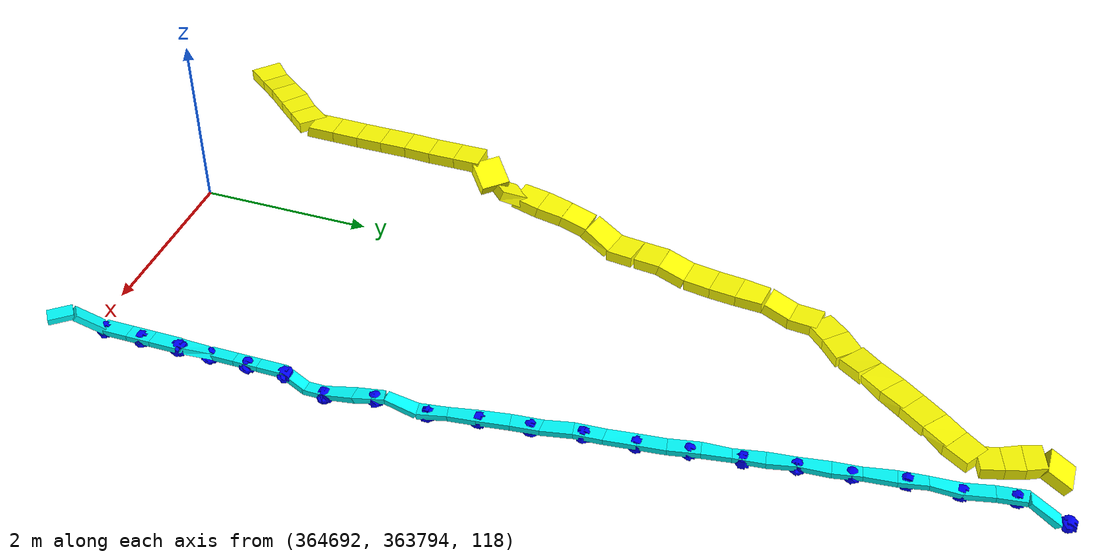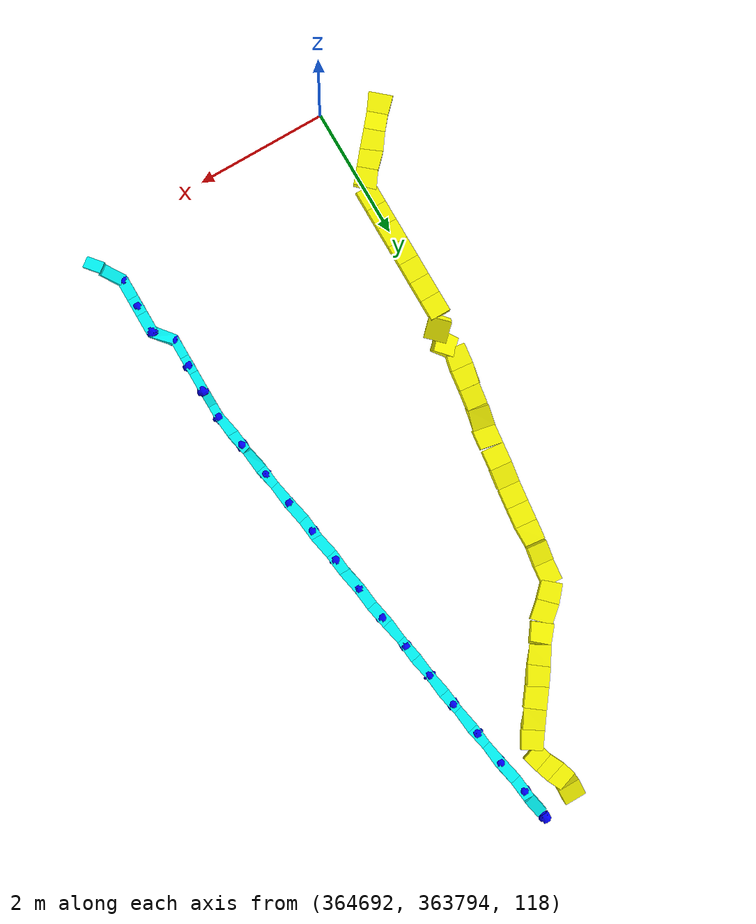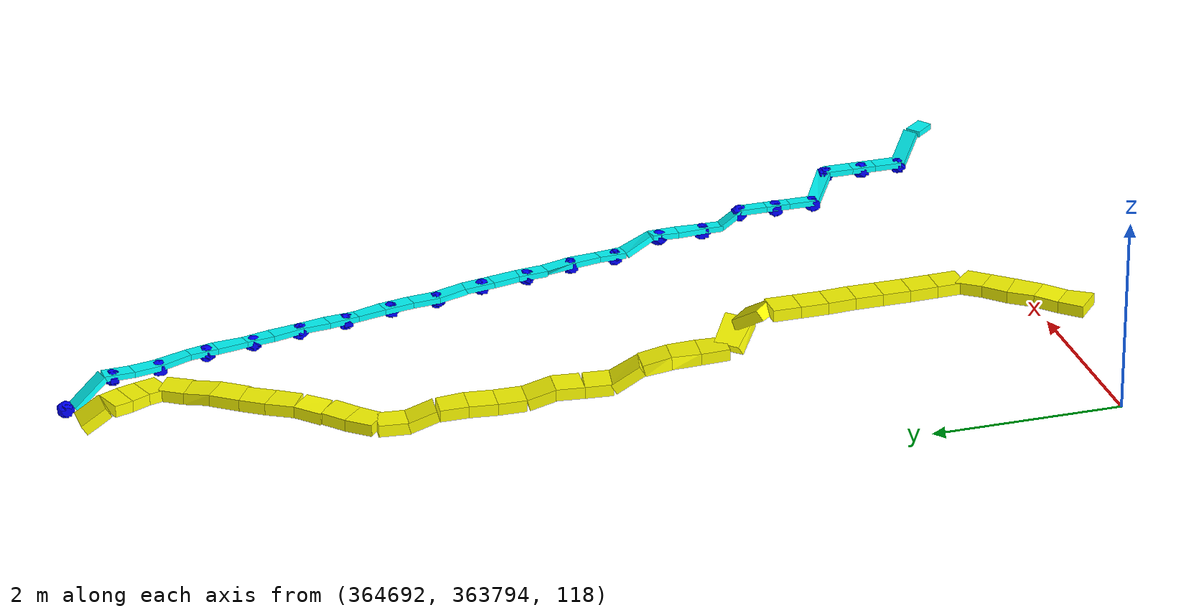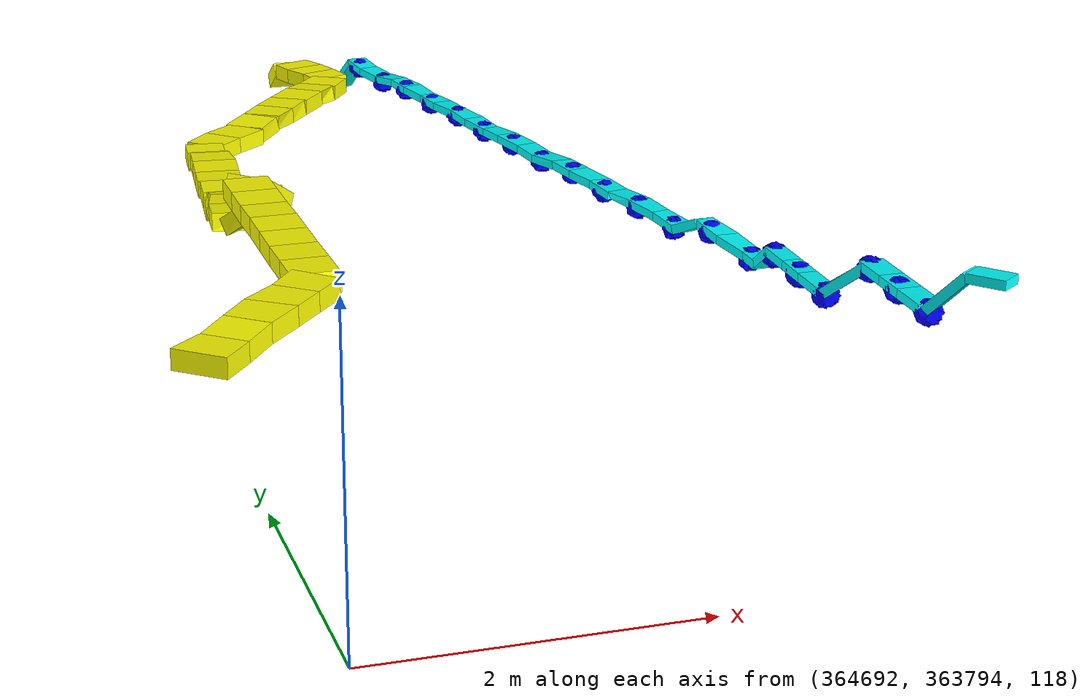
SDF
<sdf version="1.5">
 <world name="default">
  <include><uri>model://sun</uri></include>
  <model name="road_segment_88">
   <static>true</static>
   <pose>364691.49 363794.74 119.4833333333673 0 0.025601781209375292 0.876058050741327</pose>
   <link name="link">
    <collision name="collision">
     <geometry><box><size>0.2604269997808396 0.3 0.12</size></box></geometry>
     <surface><friction><ode><mu>0.2</mu><mu2>0.2</mu2></ode></friction></surface>
    </collision>
    <visual name="visual">
     <geometry><box><size>0.2604269997808396 0.3 0.12</size></box></geometry>
     <material><ambient>1 1 0 1</ambient><diffuse>1 1 0 1</diffuse><emissive>1 1 0 1</emissive></material>
    </visual>
   </link>
  </model>
  <model name="road_segment_89">
   <static>true</static>
   <pose>364691.6566666666 363794.94000000006 119.48999999990978 0 -0.07667153465420966 0.8760580505695668</pose>
   <link name="link">
    <collision name="collision">
     <geometry><box><size>0.2611087470416959 0.3 0.12</size></box></geometry>
     <surface><friction><ode><mu>0.2</mu><mu2>0.2</mu2></ode></friction></surface>
    </collision>
    <visual name="visual">
     <geometry><box><size>0.2611087470416959 0.3 0.12</size></box></geometry>
     <material><ambient>1 1 0 1</ambient><diffuse>1 1 0 1</diffuse><emissive>1 1 0 1</emissive></material>
    </visual>
   </link>
  </model>
  <model name="road_segment_90">
   <static>true</static>
   <pose>364691.82333333336 363795.14 119.49999999990978 0 -6.930708869335544e-10 0.8760580504264331</pose>
   <link name="link">
    <collision name="collision">
     <geometry><box><size>0.26034165584020325 0.3 0.12</size></box></geometry>
     <surface><friction><ode><mu>0.2</mu><mu2>0.2</mu2></ode></friction></surface>
    </collision>
    <visual name="visual">
     <geometry><box><size>0.26034165584020325 0.3 0.12</size></box></geometry>
     <material><ambient>1 1 0 1</ambient><diffuse>1 1 0 1</diffuse><emissive>1 1 0 1</emissive></material>
    </visual>
   </link>
  </model>
  <model name="road_segment_91">
   <static>true</static>
   <pose>364691.99 363795.33999999997 119.5 0 -0.0 0.876058050741327</pose>
   <link name="link">
    <collision name="collision">
     <geometry><box><size>0.260341655847656 0.3 0.12</size></box></geometry>
     <surface><friction><ode><mu>0.02</mu><mu2>0.02</mu2></ode></friction></surface>
    </collision>
    <visual name="visual">
     <geometry><box><size>0.260341655847656 0.3 0.12</size></box></geometry>
     <material><ambient>1 1 0 1</ambient><diffuse>1 1 0 1</diffuse><emissive>1 1 0 1</emissive></material>
    </visual>
   </link>
  </model>
  <model name="road_segment_92">
   <static>true</static>
   <pose>364692.1566666666 363795.54000000004 119.5 0 -0.0 0.8760580505695668</pose>
   <link name="link">
    <collision name="collision">
     <geometry><box><size>0.26034165588491964 0.3 0.12</size></box></geometry>
     <surface><friction><ode><mu>0.02</mu><mu2>0.02</mu2></ode></friction></surface>
    </collision>
    <visual name="visual">
     <geometry><box><size>0.26034165588491964 0.3 0.12</size></box></geometry>
     <material><ambient>1 1 0 1</ambient><diffuse>1 1 0 1</diffuse><emissive>1 1 0 1</emissive></material>
    </visual>
   </link>
  </model>
  <model name="road_segment_93">
   <static>true</static>
   <pose>364692.24 363795.78285714285 119.4978571429035 0 0.014998874826124125 1.5707963267948966</pose>
   <link name="link">
    <collision name="collision">
     <geometry><box><size>0.28574642678714907 0.3 0.12</size></box></geometry>
     <surface><friction><ode><mu>0.2</mu><mu2>0.2</mu2></ode></friction></surface>
    </collision>
    <visual name="visual">
     <geometry><box><size>0.28574642678714907 0.3 0.12</size></box></geometry>
     <material><ambient>1 1 0 1</ambient><diffuse>1 1 0 1</diffuse><emissive>1 1 0 1</emissive></material>
    </visual>
   </link>
  </model>
  <model name="road_segment_94">
   <static>true</static>
   <pose>364692.24 363796.0685714286 119.4928571429035 0 0.019997334299856152 1.5707963267948966</pose>
   <link name="link">
    <collision name="collision">
     <geometry><box><size>0.2857714228268845 0.3 0.12</size></box></geometry>
     <surface><friction><ode><mu>0.2</mu><mu2>0.2</mu2></ode></friction></surface>
    </collision>
    <visual name="visual">
     <geometry><box><size>0.2857714228268845 0.3 0.12</size></box></geometry>
     <material><ambient>1 1 0 1</ambient><diffuse>1 1 0 1</diffuse><emissive>1 1 0 1</emissive></material>
    </visual>
   </link>
  </model>
  <model name="road_segment_95">
   <static>true</static>
   <pose>364692.24 363796.35428571433 119.49 0 -0.0 1.5707963267948966</pose>
   <link name="link">
    <collision name="collision">
     <geometry><box><size>0.28571428573923185 0.3 0.12</size></box></geometry>
     <surface><friction><ode><mu>0.2</mu><mu2>0.2</mu2></ode></friction></surface>
    </collision>
    <visual name="visual">
     <geometry><box><size>0.28571428573923185 0.3 0.12</size></box></geometry>
     <material><ambient>1 1 0 1</ambient><diffuse>1 1 0 1</diffuse><emissive>1 1 0 1</emissive></material>
    </visual>
   </link>
  </model>
  <model name="road_segment_96">
   <static>true</static>
   <pose>364692.24 363796.64 119.49 0 -0.0 1.5707963267948966</pose>
   <link name="link">
    <collision name="collision">
     <geometry><box><size>0.2857142856810242 0.3 0.12</size></box></geometry>
     <surface><friction><ode><mu>0.2</mu><mu2>0.2</mu2></ode></friction></surface>
    </collision>
    <visual name="visual">
     <geometry><box><size>0.2857142856810242 0.3 0.12</size></box></geometry>
     <material><ambient>1 1 0 1</ambient><diffuse>1 1 0 1</diffuse><emissive>1 1 0 1</emissive></material>
    </visual>
   </link>
  </model>
  <model name="road_segment_97">
   <static>true</static>
   <pose>364692.24 363796.9257142857 119.485 0 0.0349857188254418 1.5707963267948966</pose>
   <link name="link">
    <collision name="collision">
     <geometry><box><size>0.28588923217826734 0.3 0.12</size></box></geometry>
     <surface><friction><ode><mu>0.2</mu><mu2>0.2</mu2></ode></friction></surface>
    </collision>
    <visual name="visual">
     <geometry><box><size>0.28588923217826734 0.3 0.12</size></box></geometry>
     <material><ambient>1 1 0 1</ambient><diffuse>1 1 0 1</diffuse><emissive>1 1 0 1</emissive></material>
    </visual>
   </link>
  </model>
  <model name="road_segment_98">
   <static>true</static>
   <pose>364692.24 363797.21142857143 119.48 0 -0.0 1.5707963267948966</pose>
   <link name="link">
    <collision name="collision">
     <geometry><box><size>0.2857142856810242 0.3 0.12</size></box></geometry>
     <surface><friction><ode><mu>0.2</mu><mu2>0.2</mu2></ode></friction></surface>
    </collision>
    <visual name="visual">
     <geometry><box><size>0.2857142856810242 0.3 0.12</size></box></geometry>
     <material><ambient>1 1 0 1</ambient><diffuse>1 1 0 1</diffuse><emissive>1 1 0 1</emissive></material>
    </visual>
   </link>
  </model>
  <model name="road_segment_99">
   <static>true</static>
   <pose>364692.24 363797.4971428572 119.48 0 -0.0 1.5707963267948966</pose>
   <link name="link">
    <collision name="collision">
     <geometry><box><size>0.28571428573923185 0.3 0.12</size></box></geometry>
     <surface><friction><ode><mu>0.2</mu><mu2>0.2</mu2></ode></friction></surface>
    </collision>
    <visual name="visual">
     <geometry><box><size>0.28571428573923185 0.3 0.12</size></box></geometry>
     <material><ambient>1 1 0 1</ambient><diffuse>1 1 0 1</diffuse><emissive>1 1 0 1</emissive></material>
    </visual>
   </link>
  </model>
  <model name="road_segment_100">
   <static>true</static>
   <pose>364692.33999999997 363797.74 119.40000000016298 0 0.5148059542218474 0.7853981633974483</pose>
   <link name="link">
    <collision name="collision">
     <geometry><box><size>0.3249615360392846 0.3 0.12</size></box></geometry>
     <surface><friction><ode><mu>0.2</mu><mu2>0.2</mu2></ode></friction></surface>
    </collision>
    <visual name="visual">
     <geometry><box><size>0.3249615360392846 0.3 0.12</size></box></geometry>
     <material><ambient>1 1 0 1</ambient><diffuse>1 1 0 1</diffuse><emissive>1 1 0 1</emissive></material>
    </visual>
   </link>
  </model>
  <model name="road_segment_101">
   <static>true</static>
   <pose>364692.33999999997 363797.94 119.22500000194559 0 0.5915145684228108 2.356194490337864</pose>
   <link name="link">
    <collision name="collision">
     <geometry><box><size>0.34073449892124025 0.3 0.12</size></box></geometry>
     <surface><friction><ode><mu>0.2</mu><mu2>0.2</mu2></ode></friction></surface>
    </collision>
    <visual name="visual">
     <geometry><box><size>0.34073449892124025 0.3 0.12</size></box></geometry>
     <material><ambient>1 1 0 1</ambient><diffuse>1 1 0 1</diffuse><emissive>1 1 0 1</emissive></material>
    </visual>
   </link>
  </model>
  <model name="road_segment_102">
   <static>true</static>
   <pose>364692.26 363798.18 119.11800000191182 0 0.08465005384442381 1.4288992722780443</pose>
   <link name="link">
    <collision name="collision">
     <geometry><box><size>0.28385912029155475 0.3 0.12</size></box></geometry>
     <surface><friction><ode><mu>0.2</mu><mu2>0.2</mu2></ode></friction></surface>
    </collision>
    <visual name="visual">
     <geometry><box><size>0.28385912029155475 0.3 0.12</size></box></geometry>
     <material><ambient>1 1 0 1</ambient><diffuse>1 1 0 1</diffuse><emissive>1 1 0 1</emissive></material>
    </visual>
   </link>
  </model>
  <model name="road_segment_103">
   <static>true</static>
   <pose>364692.3 363798.45999999996 119.09400000024796 0 0.0846500423249541 1.4288992720452136</pose>
   <link name="link">
    <collision name="collision">
     <geometry><box><size>0.2838591199645257 0.3 0.12</size></box></geometry>
     <surface><friction><ode><mu>0.2</mu><mu2>0.2</mu2></ode></friction></surface>
    </collision>
    <visual name="visual">
     <geometry><box><size>0.2838591199645257 0.3 0.12</size></box></geometry>
     <material><ambient>1 1 0 1</ambient><diffuse>1 1 0 1</diffuse><emissive>1 1 0 1</emissive></material>
    </visual>
   </link>
  </model>
  <model name="road_segment_104">
   <static>true</static>
   <pose>364692.33999999997 363798.74 119.04900000130532 0 0.2292432158590629 1.4288992722780443</pose>
   <link name="link">
    <collision name="collision">
     <geometry><box><size>0.29044104347021643 0.3 0.12</size></box></geometry>
     <surface><friction><ode><mu>0.2</mu><mu2>0.2</mu2></ode></friction></surface>
    </collision>
    <visual name="visual">
     <geometry><box><size>0.29044104347021643 0.3 0.12</size></box></geometry>
     <material><ambient>1 1 0 1</ambient><diffuse>1 1 0 1</diffuse><emissive>1 1 0 1</emissive></material>
    </visual>
   </link>
  </model>
  <model name="road_segment_105">
   <static>true</static>
   <pose>364692.38 363799.02 118.93000000120577 0 0.5463627489532709 1.4288992720452136</pose>
   <link name="link">
    <collision name="collision">
     <geometry><box><size>0.3310347425711785 0.3 0.12</size></box></geometry>
     <surface><friction><ode><mu>0.2</mu><mu2>0.2</mu2></ode></friction></surface>
    </collision>
    <visual name="visual">
     <geometry><box><size>0.3310347425711785 0.3 0.12</size></box></geometry>
     <material><ambient>1 1 0 1</ambient><diffuse>1 1 0 1</diffuse><emissive>1 1 0 1</emissive></material>
    </visual>
   </link>
  </model>
  <model name="road_segment_106">
   <static>true</static>
   <pose>364692.42000000004 363799.3 118.84200000003959 0 0.014141192918354853 1.4288992722780443</pose>
   <link name="link">
    <collision name="collision">
     <geometry><box><size>0.2828709953564544 0.3 0.12</size></box></geometry>
     <surface><friction><ode><mu>0.2</mu><mu2>0.2</mu2></ode></friction></surface>
    </collision>
    <visual name="visual">
     <geometry><box><size>0.2828709953564544 0.3 0.12</size></box></geometry>
     <material><ambient>1 1 0 1</ambient><diffuse>1 1 0 1</diffuse><emissive>1 1 0 1</emissive></material>
    </visual>
   </link>
  </model>
  <model name="road_segment_107">
   <static>true</static>
   <pose>364692.4542857143 363799.5828571429 118.84000000002037 0 1.418911308000869e-10 1.4711276743642474</pose>
   <link name="link">
    <collision name="collision">
     <geometry><box><size>0.28713930348392985 0.3 0.12</size></box></geometry>
     <surface><friction><ode><mu>0.2</mu><mu2>0.2</mu2></ode></friction></surface>
    </collision>
    <visual name="visual">
     <geometry><box><size>0.28713930348392985 0.3 0.12</size></box></geometry>
     <material><ambient>1 1 0 1</ambient><diffuse>1 1 0 1</diffuse><emissive>1 1 0 1</emissive></material>
    </visual>
   </link>
  </model>
  <model name="road_segment_108">
   <static>true</static>
   <pose>364692.48285714287 363799.8685714286 118.79714285767712 0 0.2900903210444509 1.471127674142367</pose>
   <link name="link">
    <collision name="collision">
     <geometry><box><size>0.2996596705725312 0.3 0.12</size></box></geometry>
     <surface><friction><ode><mu>0.2</mu><mu2>0.2</mu2></ode></friction></surface>
    </collision>
    <visual name="visual">
     <geometry><box><size>0.2996596705725312 0.3 0.12</size></box></geometry>
     <material><ambient>1 1 0 1</ambient><diffuse>1 1 0 1</diffuse><emissive>1 1 0 1</emissive></material>
    </visual>
   </link>
  </model>
  <model name="road_segment_109">
   <static>true</static>
   <pose>364692.5114285714 363800.15428571426 118.7471428576771 0 0.04971087468636034 1.4711276743642474</pose>
   <link name="link">
    <collision name="collision">
     <geometry><box><size>0.2874944543263723 0.3 0.12</size></box></geometry>
     <surface><friction><ode><mu>0.1</mu><mu2>0.1</mu2></ode></friction></surface>
    </collision>
    <visual name="visual">
     <geometry><box><size>0.2874944543263723 0.3 0.12</size></box></geometry>
     <material><ambient>1 1 0 1</ambient><diffuse>1 1 0 1</diffuse><emissive>1 1 0 1</emissive></material>
    </visual>
   </link>
  </model>
  <model name="road_segment_110">
   <static>true</static>
   <pose>364692.54000000004 363800.44 118.74 0 -0.0 1.4711276743440764</pose>
   <link name="link">
    <collision name="collision">
     <geometry><box><size>0.28713930342601107 0.3 0.12</size></box></geometry>
     <surface><friction><ode><mu>0.1</mu><mu2>0.1</mu2></ode></friction></surface>
    </collision>
    <visual name="visual">
     <geometry><box><size>0.28713930342601107 0.3 0.12</size></box></geometry>
     <material><ambient>1 1 0 1</ambient><diffuse>1 1 0 1</diffuse><emissive>1 1 0 1</emissive></material>
    </visual>
   </link>
  </model>
  <model name="road_segment_111">
   <static>true</static>
   <pose>364692.56857142854 363800.72571428574 118.73142857207966 0 0.0596314448584297 1.4711276743642474</pose>
   <link name="link">
    <collision name="collision">
     <geometry><box><size>0.2876505816291878 0.3 0.12</size></box></geometry>
     <surface><friction><ode><mu>0.1</mu><mu2>0.1</mu2></ode></friction></surface>
    </collision>
    <visual name="visual">
     <geometry><box><size>0.2876505816291878 0.3 0.12</size></box></geometry>
     <material><ambient>1 1 0 1</ambient><diffuse>1 1 0 1</diffuse><emissive>1 1 0 1</emissive></material>
    </visual>
   </link>
  </model>
  <model name="road_segment_112">
   <static>true</static>
   <pose>364692.59714285715 363801.0114285714 118.67142857207968 0 0.3439730528641138 1.471127674142367</pose>
   <link name="link">
    <collision name="collision">
     <geometry><box><size>0.3050058551567727 0.3 0.12</size></box></geometry>
     <surface><friction><ode><mu>0.1</mu><mu2>0.1</mu2></ode></friction></surface>
    </collision>
    <visual name="visual">
     <geometry><box><size>0.3050058551567727 0.3 0.12</size></box></geometry>
     <material><ambient>1 1 0 1</ambient><diffuse>1 1 0 1</diffuse><emissive>1 1 0 1</emissive></material>
    </visual>
   </link>
  </model>
  <model name="road_segment_113">
   <static>true</static>
   <pose>364692.62571428576 363801.2971428571 118.62 0 -0.0 1.4711276743642474</pose>
   <link name="link">
    <collision name="collision">
     <geometry><box><size>0.28713930348392985 0.3 0.12</size></box></geometry>
     <surface><friction><ode><mu>0.1</mu><mu2>0.1</mu2></ode></friction></surface>
    </collision>
    <visual name="visual">
     <geometry><box><size>0.28713930348392985 0.3 0.12</size></box></geometry>
     <material><ambient>1 1 0 1</ambient><diffuse>1 1 0 1</diffuse><emissive>1 1 0 1</emissive></material>
    </visual>
   </link>
  </model>
  <model name="road_segment_114">
   <static>true</static>
   <pose>364692.74 363801.54000000004 118.62 0 -0.0 0.7853981635429674</pose>
   <link name="link">
    <collision name="collision">
     <geometry><box><size>0.2828427124499236 0.3 0.12</size></box></geometry>
     <surface><friction><ode><mu>0.1</mu><mu2>0.1</mu2></ode></friction></surface>
    </collision>
    <visual name="visual">
     <geometry><box><size>0.2828427124499236 0.3 0.12</size></box></geometry>
     <material><ambient>1 1 0 1</ambient><diffuse>1 1 0 1</diffuse><emissive>1 1 0 1</emissive></material>
    </visual>
   </link>
  </model>
  <model name="road_segment_115">
   <static>true</static>
   <pose>364692.93999999994 363801.74 118.62 0 -0.0 0.7853981633974483</pose>
   <link name="link">
    <collision name="collision">
     <geometry><box><size>0.2828427124910826 0.3 0.12</size></box></geometry>
     <surface><friction><ode><mu>0.1</mu><mu2>0.1</mu2></ode></friction></surface>
    </collision>
    <visual name="visual">
     <geometry><box><size>0.2828427124910826 0.3 0.12</size></box></geometry>
     <material><ambient>1 1 0 1</ambient><diffuse>1 1 0 1</diffuse><emissive>1 1 0 1</emissive></material>
    </visual>
   </link>
  </model>
  <model name="road_segment_116">
   <static>true</static>
   <pose>364693.1233333333 363801.95666666667 118.63000000000001 0 -0.06963580643590021 0.9505468407648797</pose>
   <link name="link">
    <collision name="collision">
     <geometry><box><size>0.2874408151785346 0.3 0.12</size></box></geometry>
     <surface><friction><ode><mu>0.2</mu><mu2>0.2</mu2></ode></friction></surface>
    </collision>
    <visual name="visual">
     <geometry><box><size>0.2874408151785346 0.3 0.12</size></box></geometry>
     <material><ambient>1 1 0 1</ambient><diffuse>1 1 0 1</diffuse><emissive>1 1 0 1</emissive></material>
    </visual>
   </link>
  </model>
  <model name="road_segment_117">
   <static>true</static>
   <pose>364693.29 363802.19000000006 118.63666666667928 0 0.023245339916448973 0.9505468409300637</pose>
   <link name="link">
    <collision name="collision">
     <geometry><box><size>0.2868216635040079 0.3 0.12</size></box></geometry>
     <surface><friction><ode><mu>0.2</mu><mu2>0.2</mu2></ode></friction></surface>
    </collision>
    <visual name="visual">
     <geometry><box><size>0.2868216635040079 0.3 0.12</size></box></geometry>
     <material><ambient>1 1 0 1</ambient><diffuse>1 1 0 1</diffuse><emissive>1 1 0 1</emissive></material>
    </visual>
   </link>
  </model>
  <model name="road_segment_118">
   <static>true</static>
   <pose>364693.45666666667 363802.42333333334 118.63166666667927 0 0.011624240366182863 0.9505468407648797</pose>
   <link name="link">
    <collision name="collision">
     <geometry><box><size>0.28676354953476896 0.3 0.12</size></box></geometry>
     <surface><friction><ode><mu>0.2</mu><mu2>0.2</mu2></ode></friction></surface>
    </collision>
    <visual name="visual">
     <geometry><box><size>0.28676354953476896 0.3 0.12</size></box></geometry>
     <material><ambient>1 1 0 1</ambient><diffuse>1 1 0 1</diffuse><emissive>1 1 0 1</emissive></material>
    </visual>
   </link>
  </model>
  <model name="road_segment_119">
   <static>true</static>
   <pose>364693.6233333333 363802.6566666667 118.63 0 -0.0 0.9505468406468912</pose>
   <link name="link">
    <collision name="collision">
     <geometry><box><size>0.28674417553515724 0.3 0.12</size></box></geometry>
     <surface><friction><ode><mu>0.2</mu><mu2>0.2</mu2></ode></friction></surface>
    </collision>
    <visual name="visual">
     <geometry><box><size>0.28674417553515724 0.3 0.12</size></box></geometry>
     <material><ambient>1 1 0 1</ambient><diffuse>1 1 0 1</diffuse><emissive>1 1 0 1</emissive></material>
    </visual>
   </link>
  </model>
  <model name="road_segment_120">
   <static>true</static>
   <pose>364693.79 363802.89 118.61750000017389 0 0.0869658201629836 0.9505468409300637</pose>
   <link name="link">
    <collision name="collision">
     <geometry><box><size>0.2878319339366439 0.3 0.12</size></box></geometry>
     <surface><friction><ode><mu>0.2</mu><mu2>0.2</mu2></ode></friction></surface>
    </collision>
    <visual name="visual">
     <geometry><box><size>0.2878319339366439 0.3 0.12</size></box></geometry>
     <material><ambient>1 1 0 1</ambient><diffuse>1 1 0 1</diffuse><emissive>1 1 0 1</emissive></material>
    </visual>
   </link>
  </model>
  <model name="road_segment_121">
   <static>true</static>
   <pose>364693.95666666667 363803.1233333333 118.60250000017389 0 0.01743538006727348 0.9505468407648797</pose>
   <link name="link">
    <collision name="collision">
     <geometry><box><size>0.28678776513996995 0.3 0.12</size></box></geometry>
     <surface><friction><ode><mu>0.2</mu><mu2>0.2</mu2></ode></friction></surface>
    </collision>
    <visual name="visual">
     <geometry><box><size>0.28678776513996995 0.3 0.12</size></box></geometry>
     <material><ambient>1 1 0 1</ambient><diffuse>1 1 0 1</diffuse><emissive>1 1 0 1</emissive></material>
    </visual>
   </link>
  </model>
  <model name="road_segment_122">
   <static>true</static>
   <pose>364694.00666666665 363803.33999999997 118.6 0 -0.0 1.8925468811042274</pose>
   <link name="link">
    <collision name="collision">
     <geometry><box><size>0.21081851068402757 0.3 0.12</size></box></geometry>
     <surface><friction><ode><mu>0.02</mu><mu2>0.02</mu2></ode></friction></surface>
    </collision>
    <visual name="visual">
     <geometry><box><size>0.21081851068402757 0.3 0.12</size></box></geometry>
     <material><ambient>1 1 0 1</ambient><diffuse>1 1 0 1</diffuse><emissive>1 1 0 1</emissive></material>
    </visual>
   </link>
  </model>
  <model name="road_segment_123">
   <static>true</static>
   <pose>364693.94 363803.54000000004 118.59999999999998 0 6.740800259471083e-14 1.8925468811042274</pose>
   <link name="link">
    <collision name="collision">
     <geometry><box><size>0.21081851068402757 0.3 0.12</size></box></geometry>
     <surface><friction><ode><mu>0.02</mu><mu2>0.02</mu2></ode></friction></surface>
    </collision>
    <visual name="visual">
     <geometry><box><size>0.21081851068402757 0.3 0.12</size></box></geometry>
     <material><ambient>1 1 0 1</ambient><diffuse>1 1 0 1</diffuse><emissive>1 1 0 1</emissive></material>
    </visual>
   </link>
  </model>
  <model name="road_segment_124">
   <static>true</static>
   <pose>364693.87333333335 363803.74 118.59999999999998 0 -6.740800259471083e-14 1.8925468811042274</pose>
   <link name="link">
    <collision name="collision">
     <geometry><box><size>0.21081851068402757 0.3 0.12</size></box></geometry>
     <surface><friction><ode><mu>0.02</mu><mu2>0.02</mu2></ode></friction></surface>
    </collision>
    <visual name="visual">
     <geometry><box><size>0.21081851068402757 0.3 0.12</size></box></geometry>
     <material><ambient>1 1 0 1</ambient><diffuse>1 1 0 1</diffuse><emissive>1 1 0 1</emissive></material>
    </visual>
   </link>
  </model>
  <model name="road_segment_125">
   <static>true</static>
   <pose>364693.84 363803.965 118.52 0 0.5693131911006523 1.5707963267948966</pose>
   <link name="link">
    <collision name="collision">
     <geometry><box><size>0.29681644159311477 0.3 0.12</size></box></geometry>
     <surface><friction><ode><mu>0.2</mu><mu2>0.2</mu2></ode></friction></surface>
    </collision>
    <visual name="visual">
     <geometry><box><size>0.29681644159311477 0.3 0.12</size></box></geometry>
     <material><ambient>1 1 0 1</ambient><diffuse>1 1 0 1</diffuse><emissive>1 1 0 1</emissive></material>
    </visual>
   </link>
  </model>
  <model name="normal_astar_segment_68">
   <static>true</static>
   <pose>364695.865 363794.74 119.46 0 -0.0 2.214297435588181</pose>
   <link name="link">
    <visual name="visual">
     <geometry><box><size>0.24999999994179234 0.15 0.06</size></box></geometry>
     <material><ambient>0 1 1 1</ambient><diffuse>0 1 1 1</diffuse><emissive>0 1 1 1</emissive></material>
    </visual>
   </link>
  </model>
  <model name="normal_astar_segment_69">
   <static>true</static>
   <pose>364695.715 363794.93999999994 119.33500000116415 0 0.7853981586942693 2.214297435634747</pose>
   <link name="link">
    <visual name="visual">
     <geometry><box><size>0.35355338896337607 0.15 0.06</size></box></geometry>
     <material><ambient>0 1 1 1</ambient><diffuse>0 1 1 1</diffuse><emissive>0 1 1 1</emissive></material>
    </visual>
   </link>
  </model>
  <model name="normal_astar_segment_70">
   <static>true</static>
   <pose>364695.64 363795.17333333334 119.21000000116415 0 8.731149137147166e-09 1.5707963267948966</pose>
   <link name="link">
    <visual name="visual">
     <geometry><box><size>0.26666666666278616 0.15 0.06</size></box></geometry>
     <material><ambient>0 1 1 1</ambient><diffuse>0 1 1 1</diffuse><emissive>0 1 1 1</emissive></material>
    </visual>
   </link>
  </model>
  <model name="normal_astar_segment_71">
   <static>true</static>
   <pose>364695.64 363795.44 119.21 0 -0.0 1.5707963267948966</pose>
   <link name="link">
    <visual name="visual">
     <geometry><box><size>0.2666666667209938 0.15 0.06</size></box></geometry>
     <material><ambient>0 1 1 1</ambient><diffuse>0 1 1 1</diffuse><emissive>0 1 1 1</emissive></material>
    </visual>
   </link>
  </model>
  <model name="normal_astar_segment_72">
   <static>true</static>
   <pose>364695.64 363795.70666666667 119.21 0 -0.0 1.5707963267948966</pose>
   <link name="link">
    <visual name="visual">
     <geometry><box><size>0.26666666666278616 0.15 0.06</size></box></geometry>
     <material><ambient>0 1 1 1</ambient><diffuse>0 1 1 1</diffuse><emissive>0 1 1 1</emissive></material>
    </visual>
   </link>
  </model>
  <model name="normal_astar_segment_73">
   <static>true</static>
   <pose>364695.54000000004 363795.94 119.10500000138678 0 0.6386593789296913 2.356194490337864</pose>
   <link name="link">
    <visual name="visual">
     <geometry><box><size>0.3522782974029567 0.15 0.06</size></box></geometry>
     <material><ambient>0 1 1 1</ambient><diffuse>0 1 1 1</diffuse><emissive>0 1 1 1</emissive></material>
    </visual>
   </link>
  </model>
  <model name="normal_astar_segment_74">
   <static>true</static>
   <pose>364695.44 363796.17333333334 119.00000000176513 0 7.56333662377166e-09 1.5707963267948966</pose>
   <link name="link">
    <visual name="visual">
     <geometry><box><size>0.26666666666278616 0.15 0.06</size></box></geometry>
     <material><ambient>0 1 1 1</ambient><diffuse>0 1 1 1</diffuse><emissive>0 1 1 1</emissive></material>
    </visual>
   </link>
  </model>
  <model name="normal_astar_segment_75">
   <static>true</static>
   <pose>364695.44 363796.44 119.00000000075669 0 -0.0 1.5707963267948966</pose>
   <link name="link">
    <visual name="visual">
     <geometry><box><size>0.2666666667209938 0.15 0.06</size></box></geometry>
     <material><ambient>0 1 1 1</ambient><diffuse>0 1 1 1</diffuse><emissive>0 1 1 1</emissive></material>
    </visual>
   </link>
  </model>
  <model name="normal_astar_segment_76">
   <static>true</static>
   <pose>364695.44 363796.70666666667 119.00000000075669 0 -0.0 1.5707963267948966</pose>
   <link name="link">
    <visual name="visual">
     <geometry><box><size>0.26666666666278616 0.15 0.06</size></box></geometry>
     <material><ambient>0 1 1 1</ambient><diffuse>0 1 1 1</diffuse><emissive>0 1 1 1</emissive></material>
    </visual>
   </link>
  </model>
  <model name="normal_astar_segment_77">
   <static>true</static>
   <pose>364695.44 363796.94000000006 118.92500000122963 0 0.643501105738519 1.5707963267948966</pose>
   <link name="link">
    <visual name="visual">
     <geometry><box><size>0.24999999944178342 0.15 0.06</size></box></geometry>
     <material><ambient>0 1 1 1</ambient><diffuse>0 1 1 1</diffuse><emissive>0 1 1 1</emissive></material>
    </visual>
   </link>
  </model>
  <model name="normal_astar_segment_78">
   <static>true</static>
   <pose>364695.44 363797.14 118.85000000098225 0 7.203198039718717e-09 1.5707963267948966</pose>
   <link name="link">
    <visual name="visual">
     <geometry><box><size>0.19999999995343387 0.15 0.06</size></box></geometry>
     <material><ambient>0 1 1 1</ambient><diffuse>0 1 1 1</diffuse><emissive>0 1 1 1</emissive></material>
    </visual>
   </link>
  </model>
  <model name="normal_astar_segment_79">
   <static>true</static>
   <pose>364695.41599999997 363797.388 118.8608000002635 0 -0.07190782570626847 1.731559067467339</pose>
   <link name="link">
    <visual name="visual">
     <geometry><box><size>0.3006435763243342 0.15 0.06</size></box></geometry>
     <material><ambient>0 1 1 1</ambient><diffuse>0 1 1 1</diffuse><emissive>0 1 1 1</emissive></material>
    </visual>
   </link>
  </model>
  <model name="normal_astar_segment_80">
   <static>true</static>
   <pose>364695.368 363797.684 118.88240000026664 0 -0.0719078256924906 1.731559067436267</pose>
   <link name="link">
    <visual name="visual">
     <geometry><box><size>0.3006435763816418 0.15 0.06</size></box></geometry>
     <material><ambient>0 1 1 1</ambient><diffuse>0 1 1 1</diffuse><emissive>0 1 1 1</emissive></material>
    </visual>
   </link>
  </model>
  <model name="normal_astar_segment_81">
   <static>true</static>
   <pose>364695.31999999995 363797.98 118.8310000001944 0 0.39324311985289123 1.731559067467339</pose>
   <link name="link">
    <visual name="visual">
     <geometry><box><size>0.32464651549289786 0.15 0.06</size></box></geometry>
     <material><ambient>0 1 1 1</ambient><diffuse>0 1 1 1</diffuse><emissive>0 1 1 1</emissive></material>
    </visual>
   </link>
  </model>
  <model name="normal_astar_segment_82">
   <static>true</static>
   <pose>364695.272 363798.27599999995 118.77360000011547 0 -0.032003301148690606 1.7315590672446584</pose>
   <link name="link">
    <visual name="visual">
     <geometry><box><size>0.30002026600485593 0.15 0.06</size></box></geometry>
     <material><ambient>0 1 1 1</ambient><diffuse>0 1 1 1</diffuse><emissive>0 1 1 1</emissive></material>
    </visual>
   </link>
  </model>
  <model name="normal_astar_segment_83">
   <static>true</static>
   <pose>364695.22400000005 363798.572 118.77920000005517 0 -0.005335654282996204 1.731559067467339</pose>
   <link name="link">
    <visual name="visual">
     <geometry><box><size>0.299870905532025 0.15 0.06</size></box></geometry>
     <material><ambient>0 1 1 1</ambient><diffuse>0 1 1 1</diffuse><emissive>0 1 1 1</emissive></material>
    </visual>
   </link>
  </model>
  <model name="normal_astar_segment_84">
   <static>true</static>
   <pose>364695.176 363798.868 118.77120000010349 0 0.058625500683211894 1.731559067436267</pose>
   <link name="link">
    <visual name="visual">
     <geometry><box><size>0.3003826892684107 0.15 0.06</size></box></geometry>
     <material><ambient>0 1 1 1</ambient><diffuse>0 1 1 1</diffuse><emissive>0 1 1 1</emissive></material>
    </visual>
   </link>
  </model>
  <model name="normal_astar_segment_85">
   <static>true</static>
   <pose>364695.128 363799.164 118.76120000010349 0 0.008003387730673795 1.731559067467339</pose>
   <link name="link">
    <visual name="visual">
     <geometry><box><size>0.2998762411161367 0.15 0.06</size></box></geometry>
     <material><ambient>0 1 1 1</ambient><diffuse>0 1 1 1</diffuse><emissive>0 1 1 1</emissive></material>
    </visual>
   </link>
  </model>
  <model name="normal_astar_segment_86">
   <static>true</static>
   <pose>364695.07999999996 363799.45999999996 118.75999999999998 0 4.7390582876138863e-14 1.731559067436267</pose>
   <link name="link">
    <visual name="visual">
     <geometry><box><size>0.2998666370562233 0.15 0.06</size></box></geometry>
     <material><ambient>0 1 1 1</ambient><diffuse>0 1 1 1</diffuse><emissive>0 1 1 1</emissive></material>
    </visual>
   </link>
  </model>
  <model name="normal_astar_segment_87">
   <static>true</static>
   <pose>364695.032 363799.756 118.75360000021443 0 0.04265974383772129 1.731559067467339</pose>
   <link name="link">
    <visual name="visual">
     <geometry><box><size>0.3001397007627781 0.15 0.06</size></box></geometry>
     <material><ambient>0 1 1 1</ambient><diffuse>0 1 1 1</diffuse><emissive>0 1 1 1</emissive></material>
    </visual>
   </link>
  </model>
  <model name="normal_astar_segment_88">
   <static>true</static>
   <pose>364694.984 363800.052 118.73360000021444 0 0.0904594404665251 1.7315590672446584</pose>
   <link name="link">
    <visual name="visual">
     <geometry><box><size>0.3010977250614022 0.15 0.06</size></box></geometry>
     <material><ambient>0 1 1 1</ambient><diffuse>0 1 1 1</diffuse><emissive>0 1 1 1</emissive></material>
    </visual>
   </link>
  </model>
  <model name="normal_astar_segment_89">
   <static>true</static>
   <pose>364694.936 363800.348 118.72000000000001 0 -4.739058288521932e-14 1.731559067467339</pose>
   <link name="link">
    <visual name="visual">
     <geometry><box><size>0.2998666369987662 0.15 0.06</size></box></geometry>
     <material><ambient>0 1 1 1</ambient><diffuse>0 1 1 1</diffuse><emissive>0 1 1 1</emissive></material>
    </visual>
   </link>
  </model>
  <model name="normal_astar_segment_90">
   <static>true</static>
   <pose>364694.88800000004 363800.644 118.72000000000001 0 4.7390582876138863e-14 1.731559067436267</pose>
   <link name="link">
    <visual name="visual">
     <geometry><box><size>0.2998666370562233 0.15 0.06</size></box></geometry>
     <material><ambient>0 1 1 1</ambient><diffuse>0 1 1 1</diffuse><emissive>0 1 1 1</emissive></material>
    </visual>
   </link>
  </model>
  <model name="normal_astar_segment_91">
   <static>true</static>
   <pose>364694.83999999997 363800.94 118.71 0 0.06659768192865352 1.731559067467339</pose>
   <link name="link">
    <visual name="visual">
     <geometry><box><size>0.3005328600751509 0.15 0.06</size></box></geometry>
     <material><ambient>0 1 1 1</ambient><diffuse>0 1 1 1</diffuse><emissive>0 1 1 1</emissive></material>
    </visual>
   </link>
  </model>
  <model name="normal_astar_segment_92">
   <static>true</static>
   <pose>364694.792 363801.23600000003 118.69999999999999 0 -0.0 1.731559067436267</pose>
   <link name="link">
    <visual name="visual">
     <geometry><box><size>0.2998666370562233 0.15 0.06</size></box></geometry>
     <material><ambient>0 1 1 1</ambient><diffuse>0 1 1 1</diffuse><emissive>0 1 1 1</emissive></material>
    </visual>
   </link>
  </model>
  <model name="normal_astar_segment_93">
   <static>true</static>
   <pose>364694.74399999995 363801.532 118.69999999999999 0 -0.0 1.731559067467339</pose>
   <link name="link">
    <visual name="visual">
     <geometry><box><size>0.2998666369987662 0.15 0.06</size></box></geometry>
     <material><ambient>0 1 1 1</ambient><diffuse>0 1 1 1</diffuse><emissive>0 1 1 1</emissive></material>
    </visual>
   </link>
  </model>
  <model name="normal_astar_segment_94">
   <static>true</static>
   <pose>364694.696 363801.828 118.69320000011105 0 0.045322436037554606 1.7315590672446584</pose>
   <link name="link">
    <visual name="visual">
     <geometry><box><size>0.30017488237322393 0.15 0.06</size></box></geometry>
     <material><ambient>0 1 1 1</ambient><diffuse>0 1 1 1</diffuse><emissive>0 1 1 1</emissive></material>
    </visual>
   </link>
  </model>
  <model name="normal_astar_segment_95">
   <static>true</static>
   <pose>364694.64800000004 363802.124 118.68320000011106 0 0.02133958210250702 1.731559067467339</pose>
   <link name="link">
    <visual name="visual">
     <geometry><box><size>0.2999349262553347 0.15 0.06</size></box></geometry>
     <material><ambient>0 1 1 1</ambient><diffuse>0 1 1 1</diffuse><emissive>0 1 1 1</emissive></material>
    </visual>
   </link>
  </model>
  <model name="normal_astar_segment_96">
   <static>true</static>
   <pose>364694.6 363802.42000000004 118.67999999999999 0 -0.0 1.731559067436267</pose>
   <link name="link">
    <visual name="visual">
     <geometry><box><size>0.2998666370562233 0.15 0.06</size></box></geometry>
     <material><ambient>0 1 1 1</ambient><diffuse>0 1 1 1</diffuse><emissive>0 1 1 1</emissive></material>
    </visual>
   </link>
  </model>
  <model name="normal_astar_segment_97">
   <static>true</static>
   <pose>364694.552 363802.716 118.67700000028695 0 0.020006223322748984 1.731559067467339</pose>
   <link name="link">
    <visual name="visual">
     <geometry><box><size>0.29992665766494087 0.15 0.06</size></box></geometry>
     <material><ambient>0 1 1 1</ambient><diffuse>0 1 1 1</diffuse><emissive>0 1 1 1</emissive></material>
    </visual>
   </link>
  </model>
  <model name="normal_astar_segment_98">
   <static>true</static>
   <pose>364694.50399999996 363803.012 118.65200000028698 0 0.1456922369112377 1.731559067436267</pose>
   <link name="link">
    <visual name="visual">
     <geometry><box><size>0.30307754794757297 0.15 0.06</size></box></geometry>
     <material><ambient>0 1 1 1</ambient><diffuse>0 1 1 1</diffuse><emissive>0 1 1 1</emissive></material>
    </visual>
   </link>
  </model>
  <model name="normal_astar_segment_99">
   <static>true</static>
   <pose>364694.456 363803.308 118.63080000005542 0 -0.005335655020562238 1.731559067467339</pose>
   <link name="link">
    <visual name="visual">
     <geometry><box><size>0.2998709055332051 0.15 0.06</size></box></geometry>
     <material><ambient>0 1 1 1</ambient><diffuse>0 1 1 1</diffuse><emissive>0 1 1 1</emissive></material>
    </visual>
   </link>
  </model>
  <model name="normal_astar_segment_100">
   <static>true</static>
   <pose>364694.408 363803.60400000005 118.6364000001057 0 -0.03200330114859592 1.7315590672446584</pose>
   <link name="link">
    <visual name="visual">
     <geometry><box><size>0.300020266004855 0.15 0.06</size></box></geometry>
     <material><ambient>0 1 1 1</ambient><diffuse>0 1 1 1</diffuse><emissive>0 1 1 1</emissive></material>
    </visual>
   </link>
  </model>
  <model name="normal_astar_segment_101">
   <static>true</static>
   <pose>364694.36 363803.9 118.51080000039447 0 0.7158316976881866 1.731559067467339</pose>
   <link name="link">
    <visual name="visual">
     <geometry><box><size>0.39741243020112066 0.15 0.06</size></box></geometry>
     <material><ambient>0 1 1 1</ambient><diffuse>0 1 1 1</diffuse><emissive>0 1 1 1</emissive></material>
    </visual>
   </link>
  </model>
  <model name="dijkstra_marker_42">
   <static>true</static>
   <pose>364695.64 363795.04 119.18000000232831 0 0 0</pose>
   <link name="link">
    <visual name="visual">
     <geometry><sphere><radius>0.08</radius></sphere></geometry>
     <material><ambient>0 0 1 1</ambient><diffuse>0 0 1 1</diffuse><emissive>0 0 1 1</emissive></material>
    </visual>
   </link>
  </model>
  <model name="dijkstra_marker_43">
   <static>true</static>
   <pose>364695.64 363795.44 119.18 0 0 0</pose>
   <link name="link">
    <visual name="visual">
     <geometry><sphere><radius>0.08</radius></sphere></geometry>
     <material><ambient>0 0 1 1</ambient><diffuse>0 0 1 1</diffuse><emissive>0 0 1 1</emissive></material>
    </visual>
   </link>
  </model>
  <model name="dijkstra_marker_44">
   <static>true</static>
   <pose>364695.64 363795.84 119.18 0 0 0</pose>
   <link name="link">
    <visual name="visual">
     <geometry><sphere><radius>0.08</radius></sphere></geometry>
     <material><ambient>0 0 1 1</ambient><diffuse>0 0 1 1</diffuse><emissive>0 0 1 1</emissive></material>
    </visual>
   </link>
  </model>
  <model name="dijkstra_marker_45">
   <static>true</static>
   <pose>364695.44 363796.04 118.97000000277359 0 0 0</pose>
   <link name="link">
    <visual name="visual">
     <geometry><sphere><radius>0.08</radius></sphere></geometry>
     <material><ambient>0 0 1 1</ambient><diffuse>0 0 1 1</diffuse><emissive>0 0 1 1</emissive></material>
    </visual>
   </link>
  </model>
  <model name="dijkstra_marker_46">
   <static>true</static>
   <pose>364695.44 363796.44 118.9700000007567 0 0 0</pose>
   <link name="link">
    <visual name="visual">
     <geometry><sphere><radius>0.08</radius></sphere></geometry>
     <material><ambient>0 0 1 1</ambient><diffuse>0 0 1 1</diffuse><emissive>0 0 1 1</emissive></material>
    </visual>
   </link>
  </model>
  <model name="dijkstra_marker_47">
   <static>true</static>
   <pose>364695.44 363796.84 118.9700000007567 0 0 0</pose>
   <link name="link">
    <visual name="visual">
     <geometry><sphere><radius>0.08</radius></sphere></geometry>
     <material><ambient>0 0 1 1</ambient><diffuse>0 0 1 1</diffuse><emissive>0 0 1 1</emissive></material>
    </visual>
   </link>
  </model>
  <model name="dijkstra_marker_48">
   <static>true</static>
   <pose>364695.44 363797.24 118.82000000026194 0 0 0</pose>
   <link name="link">
    <visual name="visual">
     <geometry><sphere><radius>0.08</radius></sphere></geometry>
     <material><ambient>0 0 1 1</ambient><diffuse>0 0 1 1</diffuse><emissive>0 0 1 1</emissive></material>
    </visual>
   </link>
  </model>
  <model name="dijkstra_marker_49">
   <static>true</static>
   <pose>364695.36 363797.73333333334 118.85600000026719 0 0 0</pose>
   <link name="link">
    <visual name="visual">
     <geometry><sphere><radius>0.08</radius></sphere></geometry>
     <material><ambient>0 0 1 1</ambient><diffuse>0 0 1 1</diffuse><emissive>0 0 1 1</emissive></material>
    </visual>
   </link>
  </model>
  <model name="dijkstra_marker_50">
   <static>true</static>
   <pose>364695.28 363798.2266666667 118.74200000010943 0 0 0</pose>
   <link name="link">
    <visual name="visual">
     <geometry><sphere><radius>0.08</radius></sphere></geometry>
     <material><ambient>0 0 1 1</ambient><diffuse>0 0 1 1</diffuse><emissive>0 0 1 1</emissive></material>
    </visual>
   </link>
  </model>
  <model name="dijkstra_marker_51">
   <static>true</static>
   <pose>364695.2 363798.72 118.75 0 0 0</pose>
   <link name="link">
    <visual name="visual">
     <geometry><sphere><radius>0.08</radius></sphere></geometry>
     <material><ambient>0 0 1 1</ambient><diffuse>0 0 1 1</diffuse><emissive>0 0 1 1</emissive></material>
    </visual>
   </link>
  </model>
  <model name="dijkstra_marker_52">
   <static>true</static>
   <pose>364695.12 363799.2133333333 118.72999999999999 0 0 0</pose>
   <link name="link">
    <visual name="visual">
     <geometry><sphere><radius>0.08</radius></sphere></geometry>
     <material><ambient>0 0 1 1</ambient><diffuse>0 0 1 1</diffuse><emissive>0 0 1 1</emissive></material>
    </visual>
   </link>
  </model>
  <model name="dijkstra_marker_53">
   <static>true</static>
   <pose>364695.04 363799.70666666667 118.73 0 0 0</pose>
   <link name="link">
    <visual name="visual">
     <geometry><sphere><radius>0.08</radius></sphere></geometry>
     <material><ambient>0 0 1 1</ambient><diffuse>0 0 1 1</diffuse><emissive>0 0 1 1</emissive></material>
    </visual>
   </link>
  </model>
  <model name="dijkstra_marker_54">
   <static>true</static>
   <pose>364694.96 363800.2 118.69000000000001 0 0 0</pose>
   <link name="link">
    <visual name="visual">
     <geometry><sphere><radius>0.08</radius></sphere></geometry>
     <material><ambient>0 0 1 1</ambient><diffuse>0 0 1 1</diffuse><emissive>0 0 1 1</emissive></material>
    </visual>
   </link>
  </model>
  <model name="dijkstra_marker_55">
   <static>true</static>
   <pose>364694.88 363800.69333333336 118.69000000000003 0 0 0</pose>
   <link name="link">
    <visual name="visual">
     <geometry><sphere><radius>0.08</radius></sphere></geometry>
     <material><ambient>0 0 1 1</ambient><diffuse>0 0 1 1</diffuse><emissive>0 0 1 1</emissive></material>
    </visual>
   </link>
  </model>
  <model name="dijkstra_marker_56">
   <static>true</static>
   <pose>364694.8 363801.18666666665 118.67 0 0 0</pose>
   <link name="link">
    <visual name="visual">
     <geometry><sphere><radius>0.08</radius></sphere></geometry>
     <material><ambient>0 0 1 1</ambient><diffuse>0 0 1 1</diffuse><emissive>0 0 1 1</emissive></material>
    </visual>
   </link>
  </model>
  <model name="dijkstra_marker_57">
   <static>true</static>
   <pose>364694.72 363801.68 118.67 0 0 0</pose>
   <link name="link">
    <visual name="visual">
     <geometry><sphere><radius>0.08</radius></sphere></geometry>
     <material><ambient>0 0 1 1</ambient><diffuse>0 0 1 1</diffuse><emissive>0 0 1 1</emissive></material>
    </visual>
   </link>
  </model>
  <model name="dijkstra_marker_58">
   <static>true</static>
   <pose>364694.64 363802.17333333334 118.65 0 0 0</pose>
   <link name="link">
    <visual name="visual">
     <geometry><sphere><radius>0.08</radius></sphere></geometry>
     <material><ambient>0 0 1 1</ambient><diffuse>0 0 1 1</diffuse><emissive>0 0 1 1</emissive></material>
    </visual>
   </link>
  </model>
  <model name="dijkstra_marker_59">
   <static>true</static>
   <pose>364694.56 363802.6666666667 118.65 0 0 0</pose>
   <link name="link">
    <visual name="visual">
     <geometry><sphere><radius>0.08</radius></sphere></geometry>
     <material><ambient>0 0 1 1</ambient><diffuse>0 0 1 1</diffuse><emissive>0 0 1 1</emissive></material>
    </visual>
   </link>
  </model>
  <model name="dijkstra_marker_60">
   <static>true</static>
   <pose>364694.48 363803.16000000003 118.60000000000002 0 0 0</pose>
   <link name="link">
    <visual name="visual">
     <geometry><sphere><radius>0.08</radius></sphere></geometry>
     <material><ambient>0 0 1 1</ambient><diffuse>0 0 1 1</diffuse><emissive>0 0 1 1</emissive></material>
    </visual>
   </link>
  </model>
  <model name="dijkstra_marker_61">
   <static>true</static>
   <pose>364694.39999999997 363803.6533333333 118.60800000011177 0 0 0</pose>
   <link name="link">
    <visual name="visual">
     <geometry><sphere><radius>0.08</radius></sphere></geometry>
     <material><ambient>0 0 1 1</ambient><diffuse>0 0 1 1</diffuse><emissive>0 0 1 1</emissive></material>
    </visual>
   </link>
  </model>
  <model name="dijkstra_marker_62">
   <static>true</static>
   <pose>364694.32 363804.14666666667 118.37200000069151 0 0 0</pose>
   <link name="link">
    <visual name="visual">
     <geometry><sphere><radius>0.08</radius></sphere></geometry>
     <material><ambient>0 0 1 1</ambient><diffuse>0 0 1 1</diffuse><emissive>0 0 1 1</emissive></material>
    </visual>
   </link>
  </model>
 </world>
</sdf>
